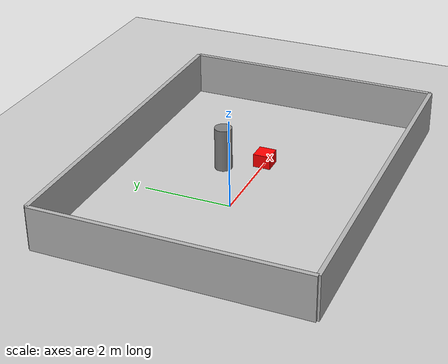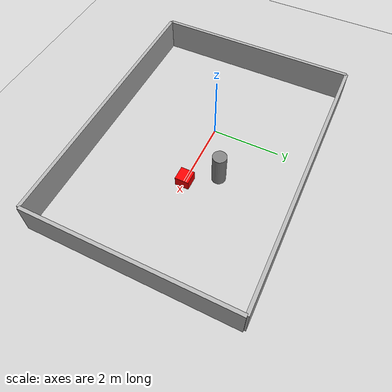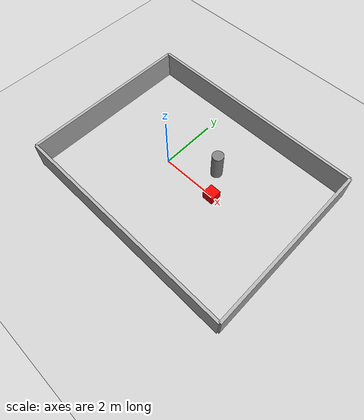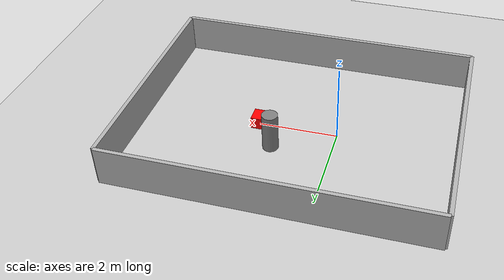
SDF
<?xml version="1.0" ?>
<sdf version="1.6">
  <world name="default">
    <!-- Physics Engine Configuration (ODE)         -->
    <physics type="ode">
      <max_step_size>0.001</max_step_size>
      <real_time_factor>1</real_time_factor>
      <real_time_update_rate>1000</real_time_update_rate>
    </physics>

    <!-- Environmental Lighting and Ground Plane    -->
    <include><uri>model://sun</uri></include>
    <include><uri>model://ground_plane</uri></include>

    <!-- Target Object: Dynamic Red Target Cube     -->
    <model name="red_target">
      <pose>2.0 0.0 0.1 0 0 0</pose>
      <static>false</static>
      <link name="link">
        <collision name="collision">
          <geometry><box><size>0.4 0.4 0.4</size></box></geometry>
        </collision>
        <visual name="visual">
          <geometry><box><size>0.4 0.4 0.4</size></box></geometry>
          <material>
            <ambient>1.0 0.0 0.0 1.0</ambient>
            <diffuse>1.0 0.0 0.0 1.0</diffuse>
          </material>
        </visual>
        <inertial>
          <mass>0.5</mass>
          <inertia>
            <ixx>0.001</ixx> <ixy>0</ixy> <ixz>0</ixz>
            <iyy>0.001</iyy> <iyz>0</iyz> <izz>0.001</izz>
          </inertia>
        </inertial>
      </link>
    </model>

    <!-- Enclosed Arena Boundaries (8m x 6m)        -->

    <!-- Left Boundary Wall (Y = 3.0m, Length = 8m) -->
    <model name="wall_left">
      <pose>1.0 3.0 0.5 0 0 0</pose>
      <static>true</static>
      <link name="link">
        <collision name="collision">
          <geometry><box><size>8 0.1 1</size></box></geometry>
        </collision>
        <visual name="visual">
          <geometry><box><size>8 0.1 1</size></box></geometry>
          <material><ambient>0.7 0.7 0.7 1</ambient></material>
        </visual>
      </link>
    </model>

    <!-- Right Boundary Wall (Y = -3.0m, Length = 8m) -->
    <model name="wall_right">
      <pose>1.0 -3.0 0.5 0 0 0</pose>
      <static>true</static>
      <link name="link">
        <collision name="collision">
          <geometry><box><size>8 0.1 1</size></box></geometry>
        </collision>
        <visual name="visual">
          <geometry><box><size>8 0.1 1</size></box></geometry>
          <material><ambient>0.7 0.7 0.7 1</ambient></material>
        </visual>
      </link>
    </model>

    <!-- Rear Boundary Wall (X = -3.0m, Length = 6m) -->
    <model name="wall_back">
      <pose>-3.0 0 0.5 0 0 1.5708</pose>
      <static>true</static>
      <link name="link">
        <collision name="collision">
          <geometry><box><size>6 0.1 1</size></box></geometry>
        </collision>
        <visual name="visual">
          <geometry><box><size>6 0.1 1</size></box></geometry>
          <material><ambient>0.7 0.7 0.7 1</ambient></material>
        </visual>
      </link>
    </model>

    <!-- Front Boundary Wall (X = 5.0m, Length = 6m) -->
    <model name="wall_front">
      <pose>5.0 0 0.5 0 0 1.5708</pose>
      <static>true</static>
      <link name="link">
        <collision name="collision">
          <geometry><box><size>6 0.1 1</size></box></geometry>
        </collision>
        <visual name="visual">
          <geometry><box><size>6 0.1 1</size></box></geometry>
          <material><ambient>0.7 0.7 0.7 1</ambient></material>
        </visual>
      </link>
    </model>

    <!-- Obstacle Environment                       -->

    <!-- Static Obstacle: Grey Cylindrical Pillar -->
    <model name="obstacle_pillar">
      <pose>1.5 0.8 0.5 0 0 0</pose>
      <static>true</static>
      <link name="link">
        <collision name="collision">
          <geometry><cylinder><radius>0.2</radius><length>1</length></cylinder></geometry>
        </collision>
        <visual name="visual">
          <geometry><cylinder><radius>0.2</radius><length>1</length></cylinder></geometry>
          <material><ambient>0.5 0.5 0.5 1</ambient></material>
        </visual>
      </link>
    </model>

  </world>
</sdf>
